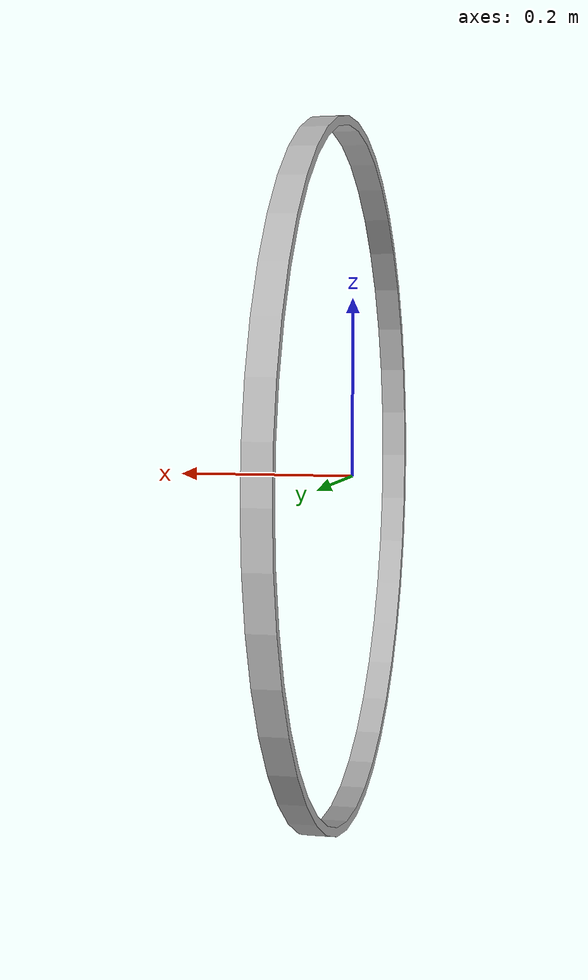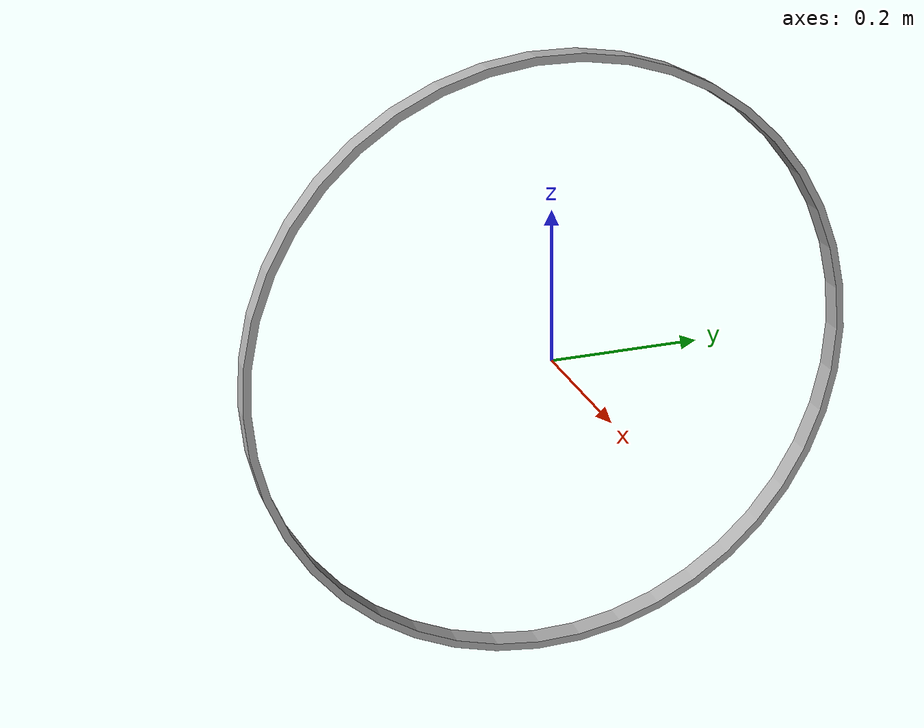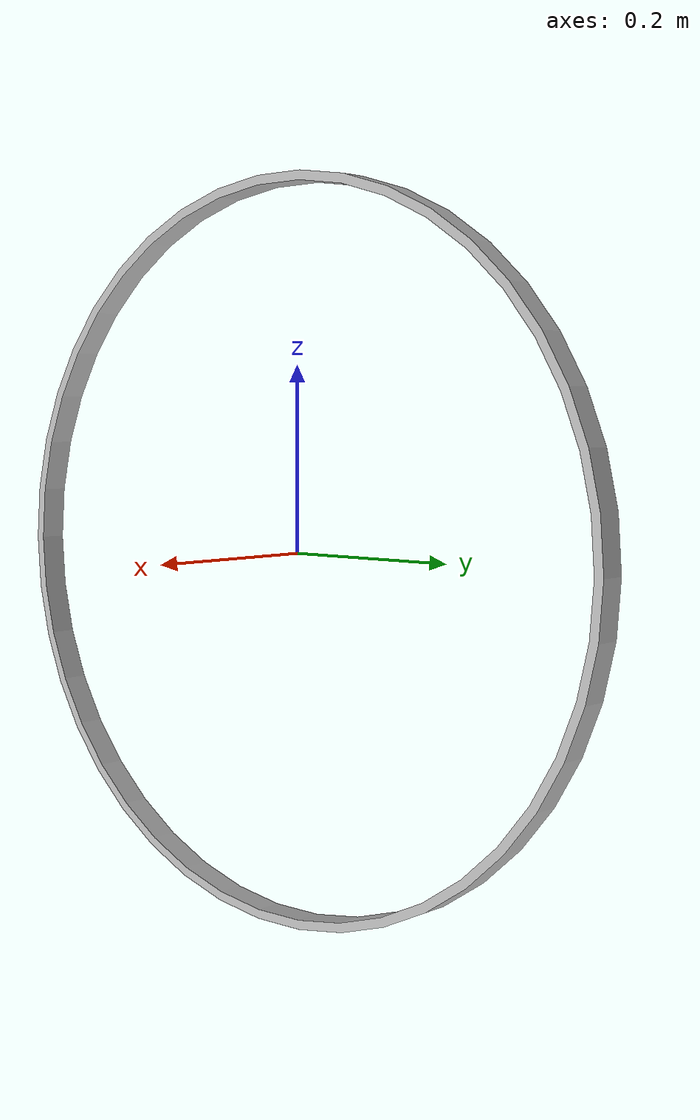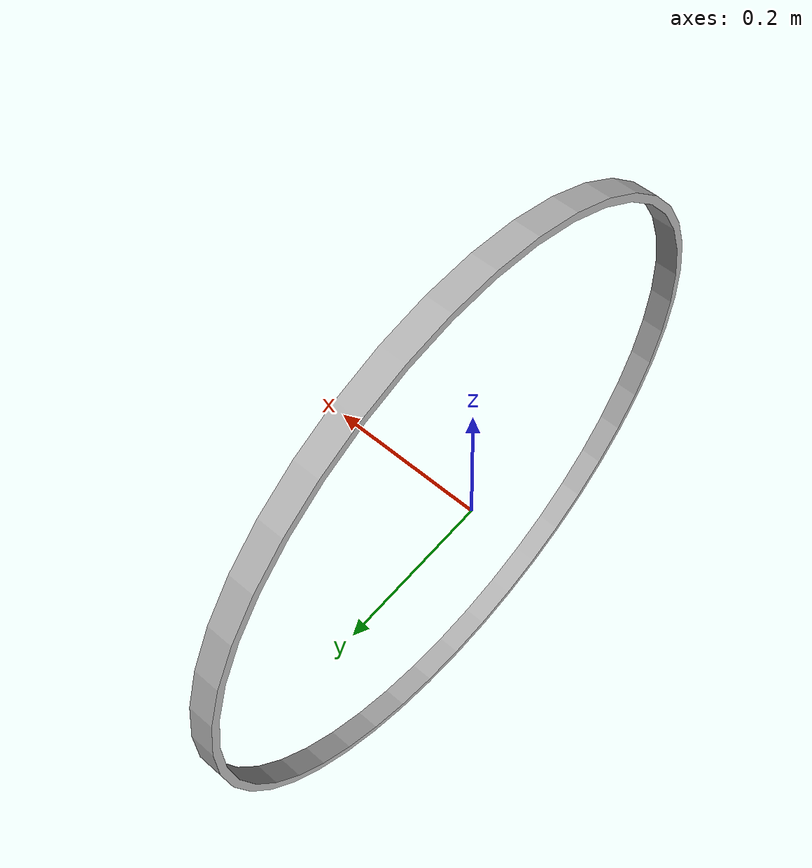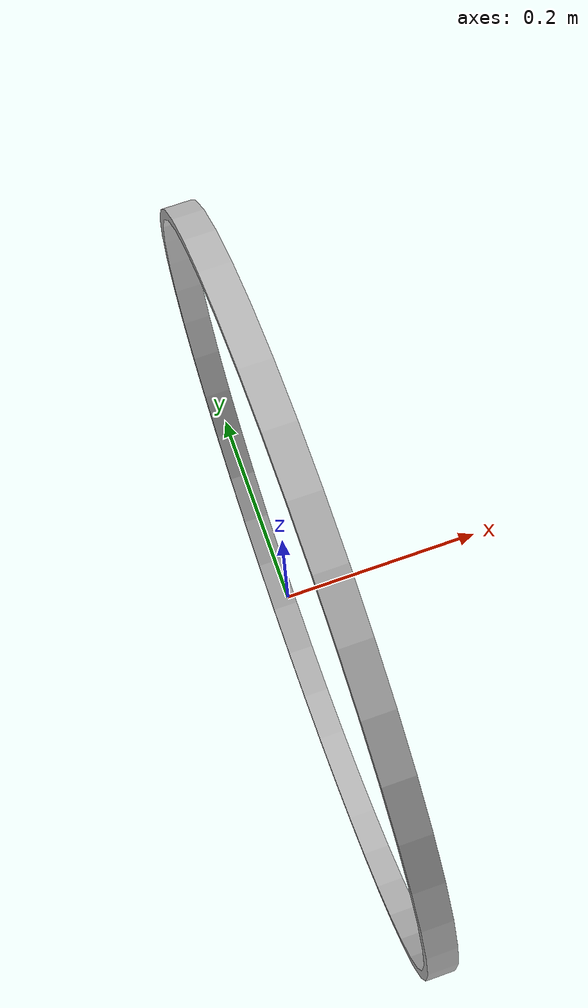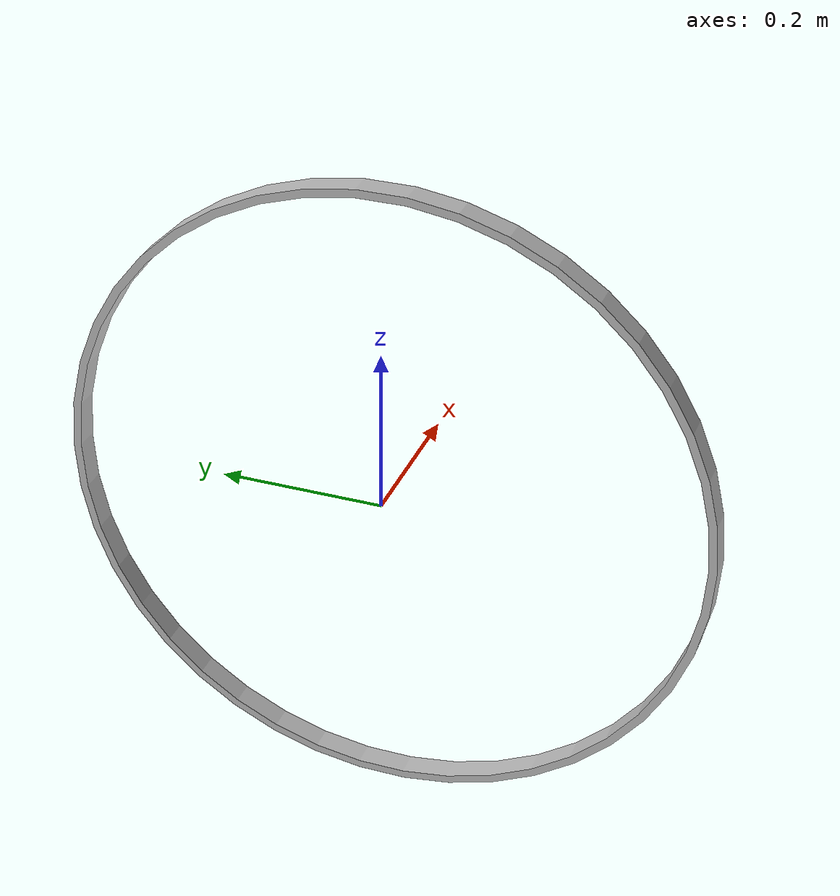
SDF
<?xml version="1.0" ?>
<sdf version="1.6">
    <model name="ring_model">
    	<pose>0 0 0 0 0 0</pose>
        <static>false</static>
        <link name="ring">
            <inertial>
                <mass>0.2</mass>
                <inertia>
                    <ixx>0.0001</ixx>
                    <ixy>0</ixy>
                    <ixz>0</ixz>
                    <iyy>0.0001</iyy>
                    <iyz>0</iyz>
                    <izz>0.0001</izz>
                </inertia>
            </inertial>
            <visual name="ring_visual">
                <geometry>
                    <mesh>
                        <uri>ring0.4.obj</uri>
                        <scale>1 1 1</scale>
                    </mesh>
                </geometry>
            </visual>
            <collision name="ring_collision">
                <geometry>
                    <mesh>
                        <uri>ring0.4.obj</uri>
                        <scale>1 1 1</scale>
                    </mesh>
                </geometry>
            </collision>
        </link>
    </model>
</sdf>
